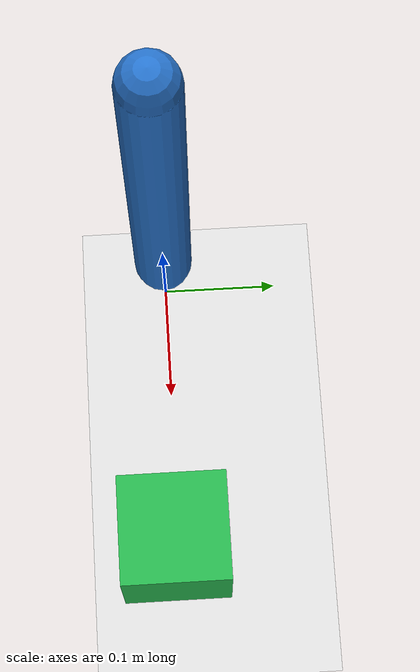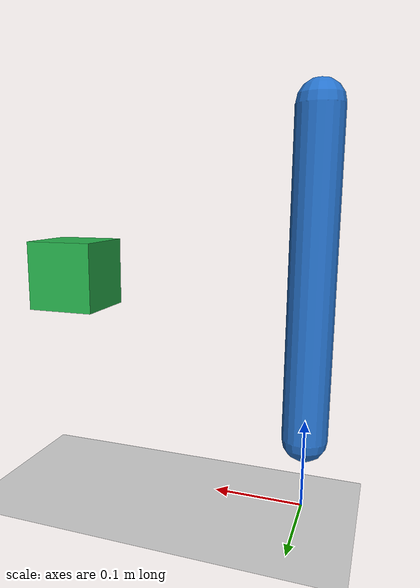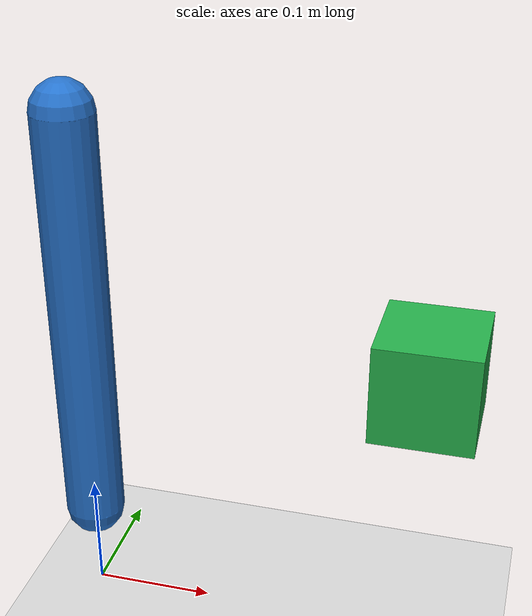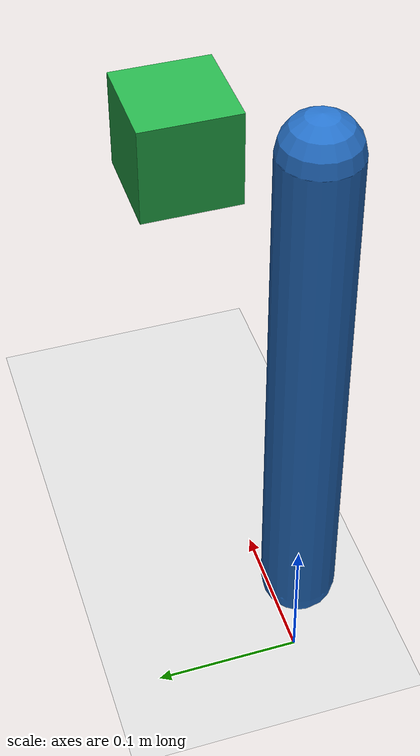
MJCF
<mujoco model="minimal tutorial scene">
  <compiler angle="radian"/>
  <option timestep="0.002" gravity="0 0 -9.81"/>

  <worldbody>
    <light name="key_light" pos="0 -0.5 1.5"/>
    <geom name="floor" type="plane" size="1 1 0.05"
          rgba="0.85 0.85 0.85 1"/>

    <body name="arm" pos="0 0 0.08">
      <joint name="arm_hinge" type="hinge" axis="0 1 0"
             range="-1.57 1.57" damping="0.2"/>
      <geom name="arm_geom" type="capsule"
            fromto="0 0 0 0 0 0.35" size="0.025" mass="0.5"
            rgba="0.15 0.45 0.80 1"/>
      <site name="tool_site" pos="0 0 0.35" size="0.015"
            rgba="0.90 0.10 0.10 1"/>
    </body>

    <body name="free_cube" pos="0.28 0 0.25">
      <freejoint/>
      <geom name="cube_geom" type="box" size="0.04 0.04 0.04"
            mass="0.1" rgba="0.15 0.70 0.30 1"/>
    </body>

    <camera name="overview" mode="targetbody" target="arm"
            pos="1.0 -1.0 0.8"/>
  </worldbody>

  <actuator>
    <position name="arm_position" joint="arm_hinge"
              kp="20" ctrlrange="-1.2 1.2"/>
  </actuator>
</mujoco>
